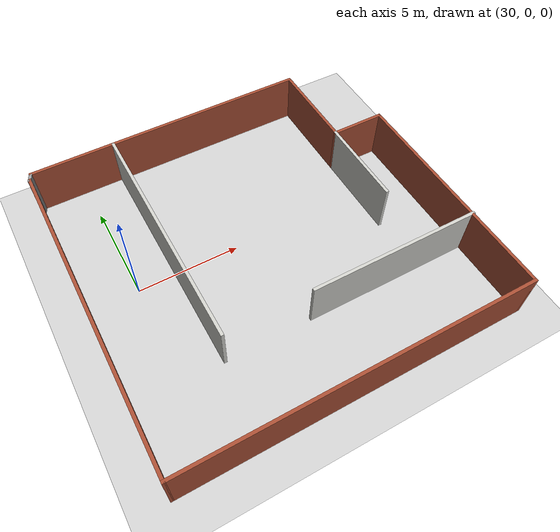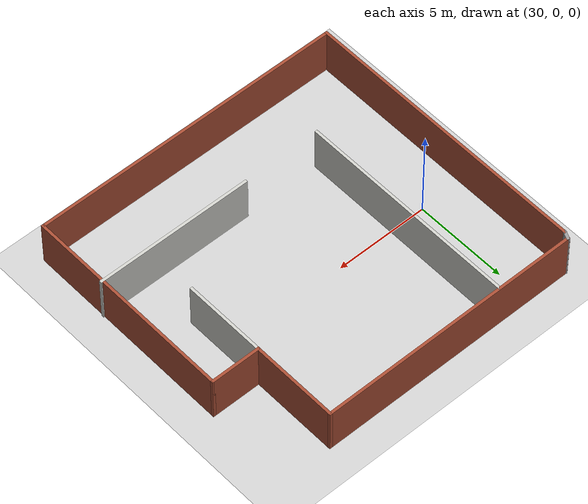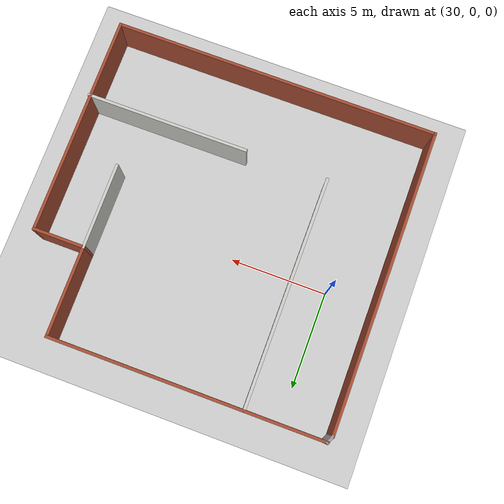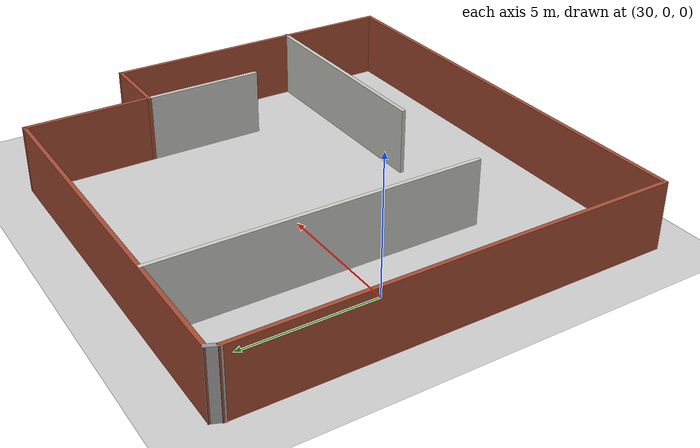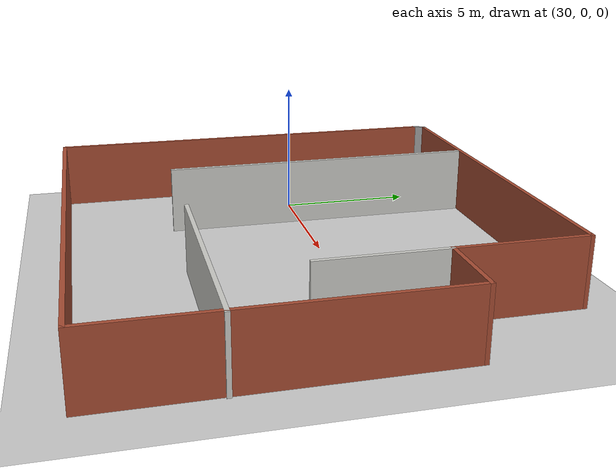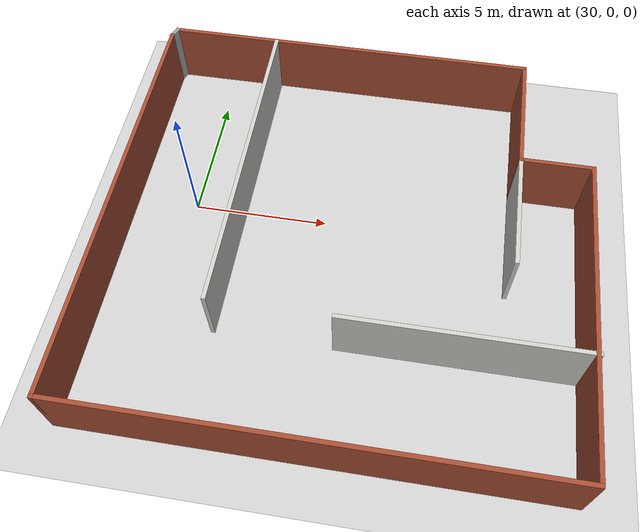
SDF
<sdf version="1.7">
 <world name="default">
  <model name="ground_plane">
   <static>1</static>
   <link name="link">
    <collision name="collision">
     <geometry><plane><normal>0 0 1</normal><size>100 100</size></plane></geometry>
     <surface>
      <contact><collide_bitmask>65535</collide_bitmask></contact>
      <friction><ode><mu>100</mu><mu2>50</mu2></ode></friction>
     </surface>
    </collision>
    <visual name="visual">
     <cast_shadows>0</cast_shadows>
     <geometry><plane><normal>0 0 1</normal><size>100 100</size></plane></geometry>
     <material>
      <script><uri>file://media/materials/scripts/gazebo.material</uri><name>Gazebo/Grey</name></script>
     </material>
    </visual>
   </link>
  </model>
  <model name="gcamp_small_building">
   <pose>36.0461 -1.10251 0 0 -0 0</pose>
   <link name="Wall_11">
    <collision name="Wall_11_Collision">
     <geometry><box><size>12 0.15 2.5</size></box></geometry>
     <pose>0 0 1.25 0 -0 0</pose>
    </collision>
    <visual name="Wall_11_Visual">
     <pose>0 0 1.25 0 -0 0</pose>
     <geometry><box><size>12 0.15 2.5</size></box></geometry>
     <material>
      <script><uri>file://media/materials/scripts/gazebo.material</uri><name>Gazebo/CeilingTiled</name></script>
      <ambient>1 1 1 1</ambient>
     </material>
     <meta><layer>0</layer></meta>
    </visual>
    <pose>-4.16991 2.00561 0 0 -0 -1.5708</pose>
   </link>
   <link name="Wall_13">
    <collision name="Wall_13_Collision">
     <geometry><box><size>8.5 0.15 2.5</size></box></geometry>
     <pose>0 0 1.25 0 -0 0</pose>
    </collision>
    <visual name="Wall_13_Visual">
     <pose>0 0 1.25 0 -0 0</pose>
     <geometry><box><size>8.5 0.15 2.5</size></box></geometry>
     <material>
      <script><uri>file://media/materials/scripts/gazebo.material</uri><name>Gazebo/CeilingTiled</name></script>
      <ambient>1 1 1 1</ambient>
     </material>
     <meta><layer>0</layer></meta>
    </visual>
    <pose>4.29338 -3.92287 0 0 -0 0</pose>
   </link>
   <link name="Wall_15">
    <collision name="Wall_15_Collision">
     <geometry><box><size>4.5 0.15 2.5</size></box></geometry>
     <pose>0 0 1.25 0 -0 0</pose>
    </collision>
    <visual name="Wall_15_Visual">
     <pose>0 0 1.25 0 -0 0</pose>
     <geometry><box><size>4.5 0.15 2.5</size></box></geometry>
     <material>
      <script><uri>file://media/materials/scripts/gazebo.material</uri><name>Gazebo/CeilingTiled</name></script>
      <ambient>1 1 1 1</ambient>
     </material>
     <meta><layer>0</layer></meta>
    </visual>
    <pose>5.8051 1.18826 0 0 -0 -1.5708</pose>
   </link>
   <link name="Wall_3">
    <collision name="Wall_3_Collision">
     <geometry><box><size>15.75 0.15 2.5</size></box></geometry>
     <pose>0 0 1.25 0 -0 0</pose>
    </collision>
    <visual name="Wall_3_Visual">
     <pose>0 0 1.25 0 -0 0</pose>
     <geometry><box><size>15.75 0.15 2.5</size></box></geometry>
     <material>
      <script><uri>file://media/materials/scripts/gazebo.material</uri><name>Gazebo/Bricks</name></script>
      <ambient>1 1 1 1</ambient>
     </material>
     <meta><layer>0</layer></meta>
    </visual>
    <pose>-8.4449 -0.18674 0 0 -0 -1.5708</pose>
   </link>
   <link name="Wall_4">
    <collision name="Wall_4_Collision">
     <geometry><box><size>17 0.15 2.5</size></box></geometry>
     <pose>0 0 1.25 0 -0 0</pose>
    </collision>
    <visual name="Wall_4_Visual">
     <pose>0 0 1.25 0 -0 0</pose>
     <geometry><box><size>17 0.15 2.5</size></box></geometry>
     <material>
      <script><uri>file://media/materials/scripts/gazebo.material</uri><name>Gazebo/Bricks</name></script>
      <ambient>1 1 1 1</ambient>
     </material>
     <meta><layer>0</layer></meta>
    </visual>
    <pose>-0.019899 -7.98674 0 0 -0 0</pose>
   </link>
   <link name="Wall_5">
    <collision name="Wall_5_Collision">
     <geometry><box><size>11.5 0.15 2.5</size></box></geometry>
     <pose>0 0 1.25 0 -0 0</pose>
    </collision>
    <visual name="Wall_5_Visual">
     <pose>0 0 1.25 0 -0 0</pose>
     <geometry><box><size>11.5 0.15 2.5</size></box></geometry>
     <material>
      <script><uri>file://media/materials/scripts/gazebo.material</uri><name>Gazebo/Bricks</name></script>
      <ambient>1 1 1 1</ambient>
     </material>
     <meta><layer>0</layer></meta>
    </visual>
    <pose>8.4051 -2.31174 0 0 -0 1.5708</pose>
   </link>
   <link name="Wall_6">
    <collision name="Wall_6_Collision">
     <geometry><box><size>2.75 0.15 2.5</size></box></geometry>
     <pose>0 0 1.25 0 -0 0</pose>
    </collision>
    <visual name="Wall_6_Visual">
     <pose>0 0 1.25 0 -0 0</pose>
     <geometry><box><size>2.75 0.15 2.5</size></box></geometry>
     <material>
      <script><uri>file://media/materials/scripts/gazebo.material</uri><name>Gazebo/Bricks</name></script>
      <ambient>1 1 1 1</ambient>
     </material>
     <meta><layer>0</layer></meta>
    </visual>
    <pose>7.1051 3.36326 0 0 -0 3.14159</pose>
   </link>
   <link name="Wall_7">
    <collision name="Wall_7_Collision">
     <geometry><box><size>4.75 0.15 2.5</size></box></geometry>
     <pose>0 0 1.25 0 -0 0</pose>
    </collision>
    <visual name="Wall_7_Visual">
     <pose>0 0 1.25 0 -0 0</pose>
     <geometry><box><size>4.75 0.15 2.5</size></box></geometry>
     <material>
      <script><uri>file://media/materials/scripts/gazebo.material</uri><name>Gazebo/Bricks</name></script>
      <ambient>1 1 1 1</ambient>
     </material>
     <meta><layer>0</layer></meta>
    </visual>
    <pose>5.8051 5.66326 0 0 -0 1.5708</pose>
   </link>
   <link name="Wall_8">
    <collision name="Wall_8_Collision">
     <geometry><box><size>14.25 0.15 2.5</size></box></geometry>
     <pose>0 0 1.25 0 -0 0</pose>
    </collision>
    <visual name="Wall_8_Visual">
     <pose>0 0 1.25 0 -0 0</pose>
     <geometry><box><size>14.25 0.15 2.5</size></box></geometry>
     <material>
      <script><uri>file://media/materials/scripts/gazebo.material</uri><name>Gazebo/Bricks</name></script>
      <ambient>1 1 1 1</ambient>
     </material>
     <meta><layer>0</layer></meta>
    </visual>
    <pose>-1.2449 7.96326 0 0 -0 3.14159</pose>
   </link>
   <link name="Wall_9">
    <collision name="Wall_9_Collision">
     <geometry><box><size>0.530789 0.15 2.5</size></box></geometry>
     <pose>0 0 1.25 0 -0 0</pose>
    </collision>
    <visual name="Wall_9_Visual">
     <pose>0 0 1.25 0 -0 0</pose>
     <geometry><box><size>0.530789 0.15 2.5</size></box></geometry>
     <material>
      <script><uri>file://media/materials/scripts/gazebo.material</uri><name>Gazebo/Grey</name></script>
      <ambient>1 1 1 1</ambient>
     </material>
     <meta><layer>0</layer></meta>
    </visual>
    <pose>-8.3699 7.78826 0 0 -0 -1.97569</pose>
   </link>
   <static>1</static>
  </model>
 </world>
</sdf>
